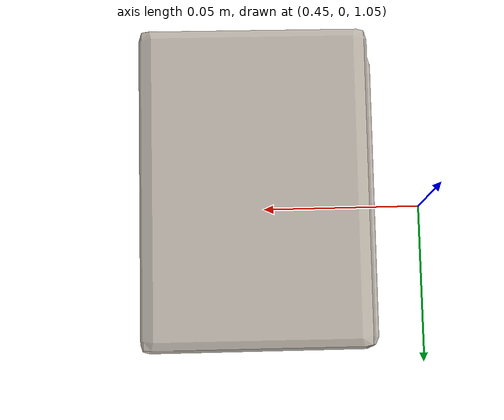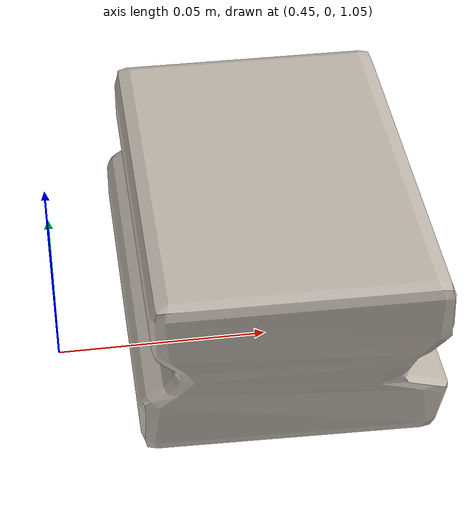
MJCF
<mujoco model="sponge_5">
  <asset>
    <mesh file="bigym/sponge_3/visual/model_normalized_0.obj" name="sponge_3_model_normalized_0_vis" scale="0.08999999999999997 0.08999999999999997 0.08999999999999997" refquat="0.7071067811865475 -0.7071067811865476 0.0 0.0"/>
    <mesh file="bigym/sponge_3/collision/model_normalized_collision_22.obj" name="sponge_3_model_normalized_collision_22._coll" scale="0.08999999999999997 0.08999999999999997 0.08999999999999997" refquat="0.7071067811865475 -0.7071067811865476 0.0 0.0"/>
    <mesh file="bigym/sponge_3/collision/model_normalized_collision_23.obj" name="sponge_3_model_normalized_collision_23._coll" scale="0.08999999999999997 0.08999999999999997 0.08999999999999997" refquat="0.7071067811865475 -0.7071067811865476 0.0 0.0"/>
    <mesh file="bigym/sponge_3/collision/model_normalized_collision_21.obj" name="sponge_3_model_normalized_collision_21._coll" scale="0.08999999999999997 0.08999999999999997 0.08999999999999997" refquat="0.7071067811865475 -0.7071067811865476 0.0 0.0"/>
    <mesh file="bigym/sponge_3/collision/model_normalized_collision_20.obj" name="sponge_3_model_normalized_collision_20._coll" scale="0.08999999999999997 0.08999999999999997 0.08999999999999997" refquat="0.7071067811865475 -0.7071067811865476 0.0 0.0"/>
    <mesh file="bigym/sponge_3/collision/model_normalized_collision_24.obj" name="sponge_3_model_normalized_collision_24._coll" scale="0.08999999999999997 0.08999999999999997 0.08999999999999997" refquat="0.7071067811865475 -0.7071067811865476 0.0 0.0"/>
    <mesh file="bigym/sponge_3/collision/model_normalized_collision_30.obj" name="sponge_3_model_normalized_collision_30._coll" scale="0.08999999999999997 0.08999999999999997 0.08999999999999997" refquat="0.7071067811865475 -0.7071067811865476 0.0 0.0"/>
    <mesh file="bigym/sponge_3/collision/model_normalized_collision_18.obj" name="sponge_3_model_normalized_collision_18._coll" scale="0.08999999999999997 0.08999999999999997 0.08999999999999997" refquat="0.7071067811865475 -0.7071067811865476 0.0 0.0"/>
    <mesh file="bigym/sponge_3/collision/model_normalized_collision_19.obj" name="sponge_3_model_normalized_collision_19._coll" scale="0.08999999999999997 0.08999999999999997 0.08999999999999997" refquat="0.7071067811865475 -0.7071067811865476 0.0 0.0"/>
    <mesh file="bigym/sponge_3/collision/model_normalized_collision_31.obj" name="sponge_3_model_normalized_collision_31._coll" scale="0.08999999999999997 0.08999999999999997 0.08999999999999997" refquat="0.7071067811865475 -0.7071067811865476 0.0 0.0"/>
    <mesh file="bigym/sponge_3/collision/model_normalized_collision_25.obj" name="sponge_3_model_normalized_collision_25._coll" scale="0.08999999999999997 0.08999999999999997 0.08999999999999997" refquat="0.7071067811865475 -0.7071067811865476 0.0 0.0"/>
    <mesh file="bigym/sponge_3/collision/model_normalized_collision_27.obj" name="sponge_3_model_normalized_collision_27._coll" scale="0.08999999999999997 0.08999999999999997 0.08999999999999997" refquat="0.7071067811865475 -0.7071067811865476 0.0 0.0"/>
    <mesh file="bigym/sponge_3/collision/model_normalized_collision_26.obj" name="sponge_3_model_normalized_collision_26._coll" scale="0.08999999999999997 0.08999999999999997 0.08999999999999997" refquat="0.7071067811865475 -0.7071067811865476 0.0 0.0"/>
    <mesh file="bigym/sponge_3/collision/model_normalized_collision_9.obj" name="sponge_3_model_normalized_collision_9._coll" scale="0.08999999999999997 0.08999999999999997 0.08999999999999997" refquat="0.7071067811865475 -0.7071067811865476 0.0 0.0"/>
    <mesh file="bigym/sponge_3/collision/model_normalized_collision_8.obj" name="sponge_3_model_normalized_collision_8._coll" scale="0.08999999999999997 0.08999999999999997 0.08999999999999997" refquat="0.7071067811865475 -0.7071067811865476 0.0 0.0"/>
    <mesh file="bigym/sponge_3/collision/model_normalized_collision_6.obj" name="sponge_3_model_normalized_collision_6._coll" scale="0.08999999999999997 0.08999999999999997 0.08999999999999997" refquat="0.7071067811865475 -0.7071067811865476 0.0 0.0"/>
    <mesh file="bigym/sponge_3/collision/model_normalized_collision_7.obj" name="sponge_3_model_normalized_collision_7._coll" scale="0.08999999999999997 0.08999999999999997 0.08999999999999997" refquat="0.7071067811865475 -0.7071067811865476 0.0 0.0"/>
    <mesh file="bigym/sponge_3/collision/model_normalized_collision_5.obj" name="sponge_3_model_normalized_collision_5._coll" scale="0.08999999999999997 0.08999999999999997 0.08999999999999997" refquat="0.7071067811865475 -0.7071067811865476 0.0 0.0"/>
    <mesh file="bigym/sponge_3/collision/model_normalized_collision_4.obj" name="sponge_3_model_normalized_collision_4._coll" scale="0.08999999999999997 0.08999999999999997 0.08999999999999997" refquat="0.7071067811865475 -0.7071067811865476 0.0 0.0"/>
    <mesh file="bigym/sponge_3/collision/model_normalized_collision_0.obj" name="sponge_3_model_normalized_collision_0._coll" scale="0.08999999999999997 0.08999999999999997 0.08999999999999997" refquat="0.7071067811865475 -0.7071067811865476 0.0 0.0"/>
    <mesh file="bigym/sponge_3/collision/model_normalized_collision_1.obj" name="sponge_3_model_normalized_collision_1._coll" scale="0.08999999999999997 0.08999999999999997 0.08999999999999997" refquat="0.7071067811865475 -0.7071067811865476 0.0 0.0"/>
    <mesh file="bigym/sponge_3/collision/model_normalized_collision_3.obj" name="sponge_3_model_normalized_collision_3._coll" scale="0.08999999999999997 0.08999999999999997 0.08999999999999997" refquat="0.7071067811865475 -0.7071067811865476 0.0 0.0"/>
    <mesh file="bigym/sponge_3/collision/model_normalized_collision_2.obj" name="sponge_3_model_normalized_collision_2._coll" scale="0.08999999999999997 0.08999999999999997 0.08999999999999997" refquat="0.7071067811865475 -0.7071067811865476 0.0 0.0"/>
    <mesh file="bigym/sponge_3/collision/model_normalized_collision_17.obj" name="sponge_3_model_normalized_collision_17._coll" scale="0.08999999999999997 0.08999999999999997 0.08999999999999997" refquat="0.7071067811865475 -0.7071067811865476 0.0 0.0"/>
    <mesh file="bigym/sponge_3/collision/model_normalized_collision_16.obj" name="sponge_3_model_normalized_collision_16._coll" scale="0.08999999999999997 0.08999999999999997 0.08999999999999997" refquat="0.7071067811865475 -0.7071067811865476 0.0 0.0"/>
    <mesh file="bigym/sponge_3/collision/model_normalized_collision_28.obj" name="sponge_3_model_normalized_collision_28._coll" scale="0.08999999999999997 0.08999999999999997 0.08999999999999997" refquat="0.7071067811865475 -0.7071067811865476 0.0 0.0"/>
    <mesh file="bigym/sponge_3/collision/model_normalized_collision_14.obj" name="sponge_3_model_normalized_collision_14._coll" scale="0.08999999999999997 0.08999999999999997 0.08999999999999997" refquat="0.7071067811865475 -0.7071067811865476 0.0 0.0"/>
    <mesh file="bigym/sponge_3/collision/model_normalized_collision_15.obj" name="sponge_3_model_normalized_collision_15._coll" scale="0.08999999999999997 0.08999999999999997 0.08999999999999997" refquat="0.7071067811865475 -0.7071067811865476 0.0 0.0"/>
    <mesh file="bigym/sponge_3/collision/model_normalized_collision_29.obj" name="sponge_3_model_normalized_collision_29._coll" scale="0.08999999999999997 0.08999999999999997 0.08999999999999997" refquat="0.7071067811865475 -0.7071067811865476 0.0 0.0"/>
    <mesh file="bigym/sponge_3/collision/model_normalized_collision_11.obj" name="sponge_3_model_normalized_collision_11._coll" scale="0.08999999999999997 0.08999999999999997 0.08999999999999997" refquat="0.7071067811865475 -0.7071067811865476 0.0 0.0"/>
    <mesh file="bigym/sponge_3/collision/model_normalized_collision_10.obj" name="sponge_3_model_normalized_collision_10._coll" scale="0.08999999999999997 0.08999999999999997 0.08999999999999997" refquat="0.7071067811865475 -0.7071067811865476 0.0 0.0"/>
    <mesh file="bigym/sponge_3/collision/model_normalized_collision_12.obj" name="sponge_3_model_normalized_collision_12._coll" scale="0.08999999999999997 0.08999999999999997 0.08999999999999997" refquat="0.7071067811865475 -0.7071067811865476 0.0 0.0"/>
    <mesh file="bigym/sponge_3/collision/model_normalized_collision_13.obj" name="sponge_3_model_normalized_collision_13._coll" scale="0.08999999999999997 0.08999999999999997 0.08999999999999997" refquat="0.7071067811865475 -0.7071067811865476 0.0 0.0"/>
    <texture type="2d" name="sponge_3_image0" file="bigym/sponge_3/visual/image0.png"/>
    <material name="Material__35" texture="sponge_3_image0" specular="0.5" shininess="0.25"/>
  </asset>
  <worldbody>
    <body pos="0.5 0 1.08" quat="0 1 0 0">
      <freejoint/>
      <body name="sponge_3_object">
        <geom solimp="0.998 0.998 0.001" solref="0.001 1" density="100" friction="0.95 0.3 0.1" type="mesh" mesh="sponge_3_model_normalized_0_vis" conaffinity="0" contype="0" group="2" material="Material__35"/>
        <geom solimp="0.998 0.998 0.001" solref="0.001 1" density="100" friction="0.95 0.3 0.1" type="mesh" mesh="sponge_3_model_normalized_collision_22._coll" group="3" rgba="0.8 0.8 0.8 0.0"/>
        <geom solimp="0.998 0.998 0.001" solref="0.001 1" density="100" friction="0.95 0.3 0.1" type="mesh" mesh="sponge_3_model_normalized_collision_23._coll" group="3" rgba="0.8 0.8 0.8 0.0"/>
        <geom solimp="0.998 0.998 0.001" solref="0.001 1" density="100" friction="0.95 0.3 0.1" type="mesh" mesh="sponge_3_model_normalized_collision_21._coll" group="3" rgba="0.8 0.8 0.8 0.0"/>
        <geom solimp="0.998 0.998 0.001" solref="0.001 1" density="100" friction="0.95 0.3 0.1" type="mesh" mesh="sponge_3_model_normalized_collision_20._coll" group="3" rgba="0.8 0.8 0.8 0.0"/>
        <geom solimp="0.998 0.998 0.001" solref="0.001 1" density="100" friction="0.95 0.3 0.1" type="mesh" mesh="sponge_3_model_normalized_collision_24._coll" group="3" rgba="0.8 0.8 0.8 0.0"/>
        <geom solimp="0.998 0.998 0.001" solref="0.001 1" density="100" friction="0.95 0.3 0.1" type="mesh" mesh="sponge_3_model_normalized_collision_30._coll" group="3" rgba="0.8 0.8 0.8 0.0"/>
        <geom solimp="0.998 0.998 0.001" solref="0.001 1" density="100" friction="0.95 0.3 0.1" type="mesh" mesh="sponge_3_model_normalized_collision_18._coll" group="3" rgba="0.8 0.8 0.8 0.0"/>
        <geom solimp="0.998 0.998 0.001" solref="0.001 1" density="100" friction="0.95 0.3 0.1" type="mesh" mesh="sponge_3_model_normalized_collision_19._coll" group="3" rgba="0.8 0.8 0.8 0.0"/>
        <geom solimp="0.998 0.998 0.001" solref="0.001 1" density="100" friction="0.95 0.3 0.1" type="mesh" mesh="sponge_3_model_normalized_collision_31._coll" group="3" rgba="0.8 0.8 0.8 0.0"/>
        <geom solimp="0.998 0.998 0.001" solref="0.001 1" density="100" friction="0.95 0.3 0.1" type="mesh" mesh="sponge_3_model_normalized_collision_25._coll" group="3" rgba="0.8 0.8 0.8 0.0"/>
        <geom solimp="0.998 0.998 0.001" solref="0.001 1" density="100" friction="0.95 0.3 0.1" type="mesh" mesh="sponge_3_model_normalized_collision_27._coll" group="3" rgba="0.8 0.8 0.8 0.0"/>
        <geom solimp="0.998 0.998 0.001" solref="0.001 1" density="100" friction="0.95 0.3 0.1" type="mesh" mesh="sponge_3_model_normalized_collision_26._coll" group="3" rgba="0.8 0.8 0.8 0.0"/>
        <geom solimp="0.998 0.998 0.001" solref="0.001 1" density="100" friction="0.95 0.3 0.1" type="mesh" mesh="sponge_3_model_normalized_collision_9._coll" group="3" rgba="0.8 0.8 0.8 0.0"/>
        <geom solimp="0.998 0.998 0.001" solref="0.001 1" density="100" friction="0.95 0.3 0.1" type="mesh" mesh="sponge_3_model_normalized_collision_8._coll" group="3" rgba="0.8 0.8 0.8 0.0"/>
        <geom solimp="0.998 0.998 0.001" solref="0.001 1" density="100" friction="0.95 0.3 0.1" type="mesh" mesh="sponge_3_model_normalized_collision_6._coll" group="3" rgba="0.8 0.8 0.8 0.0"/>
        <geom solimp="0.998 0.998 0.001" solref="0.001 1" density="100" friction="0.95 0.3 0.1" type="mesh" mesh="sponge_3_model_normalized_collision_7._coll" group="3" rgba="0.8 0.8 0.8 0.0"/>
        <geom solimp="0.998 0.998 0.001" solref="0.001 1" density="100" friction="0.95 0.3 0.1" type="mesh" mesh="sponge_3_model_normalized_collision_5._coll" group="3" rgba="0.8 0.8 0.8 0.0"/>
        <geom solimp="0.998 0.998 0.001" solref="0.001 1" density="100" friction="0.95 0.3 0.1" type="mesh" mesh="sponge_3_model_normalized_collision_4._coll" group="3" rgba="0.8 0.8 0.8 0.0"/>
        <geom solimp="0.998 0.998 0.001" solref="0.001 1" density="100" friction="0.95 0.3 0.1" type="mesh" mesh="sponge_3_model_normalized_collision_0._coll" group="3" rgba="0.8 0.8 0.8 0.0"/>
        <geom solimp="0.998 0.998 0.001" solref="0.001 1" density="100" friction="0.95 0.3 0.1" type="mesh" mesh="sponge_3_model_normalized_collision_1._coll" group="3" rgba="0.8 0.8 0.8 0.0"/>
        <geom solimp="0.998 0.998 0.001" solref="0.001 1" density="100" friction="0.95 0.3 0.1" type="mesh" mesh="sponge_3_model_normalized_collision_3._coll" group="3" rgba="0.8 0.8 0.8 0.0"/>
        <geom solimp="0.998 0.998 0.001" solref="0.001 1" density="100" friction="0.95 0.3 0.1" type="mesh" mesh="sponge_3_model_normalized_collision_2._coll" group="3" rgba="0.8 0.8 0.8 0.0"/>
        <geom solimp="0.998 0.998 0.001" solref="0.001 1" density="100" friction="0.95 0.3 0.1" type="mesh" mesh="sponge_3_model_normalized_collision_17._coll" group="3" rgba="0.8 0.8 0.8 0.0"/>
        <geom solimp="0.998 0.998 0.001" solref="0.001 1" density="100" friction="0.95 0.3 0.1" type="mesh" mesh="sponge_3_model_normalized_collision_16._coll" group="3" rgba="0.8 0.8 0.8 0.0"/>
        <geom solimp="0.998 0.998 0.001" solref="0.001 1" density="100" friction="0.95 0.3 0.1" type="mesh" mesh="sponge_3_model_normalized_collision_28._coll" group="3" rgba="0.8 0.8 0.8 0.0"/>
        <geom solimp="0.998 0.998 0.001" solref="0.001 1" density="100" friction="0.95 0.3 0.1" type="mesh" mesh="sponge_3_model_normalized_collision_14._coll" group="3" rgba="0.8 0.8 0.8 0.0"/>
        <geom solimp="0.998 0.998 0.001" solref="0.001 1" density="100" friction="0.95 0.3 0.1" type="mesh" mesh="sponge_3_model_normalized_collision_15._coll" group="3" rgba="0.8 0.8 0.8 0.0"/>
        <geom solimp="0.998 0.998 0.001" solref="0.001 1" density="100" friction="0.95 0.3 0.1" type="mesh" mesh="sponge_3_model_normalized_collision_29._coll" group="3" rgba="0.8 0.8 0.8 0.0"/>
        <geom solimp="0.998 0.998 0.001" solref="0.001 1" density="100" friction="0.95 0.3 0.1" type="mesh" mesh="sponge_3_model_normalized_collision_11._coll" group="3" rgba="0.8 0.8 0.8 0.0"/>
        <geom solimp="0.998 0.998 0.001" solref="0.001 1" density="100" friction="0.95 0.3 0.1" type="mesh" mesh="sponge_3_model_normalized_collision_10._coll" group="3" rgba="0.8 0.8 0.8 0.0"/>
        <geom solimp="0.998 0.998 0.001" solref="0.001 1" density="100" friction="0.95 0.3 0.1" type="mesh" mesh="sponge_3_model_normalized_collision_12._coll" group="3" rgba="0.8 0.8 0.8 0.0"/>
        <geom solimp="0.998 0.998 0.001" solref="0.001 1" density="100" friction="0.95 0.3 0.1" type="mesh" mesh="sponge_3_model_normalized_collision_13._coll" group="3" rgba="0.8 0.8 0.8 0.0"/>
      </body>
      <site rgba="0 0 0 0" size="0.005" pos="-8.815184999999861e-05 -3.253950000000143e-05 -0.02132230409999999" name="bottom_site"/>
      <site rgba="0 0 0 0" size="0.005" pos="-8.815184999999861e-05 -3.253950000000143e-05 0.02131509599999999" name="top_site"/>
      <site rgba="0 0 0 0" size="0.005" pos="0.03372022979999999 0.044911341899999985 -3.6040500000002184e-06" name="horizontal_radius_site"/>
    </body>
  </worldbody>
</mujoco>
